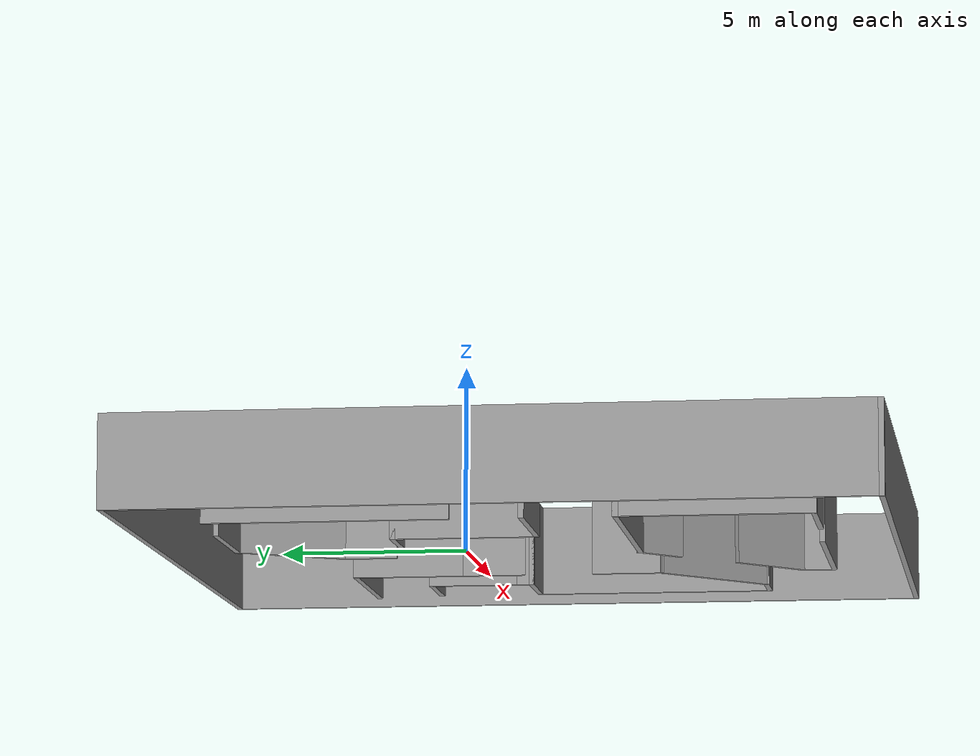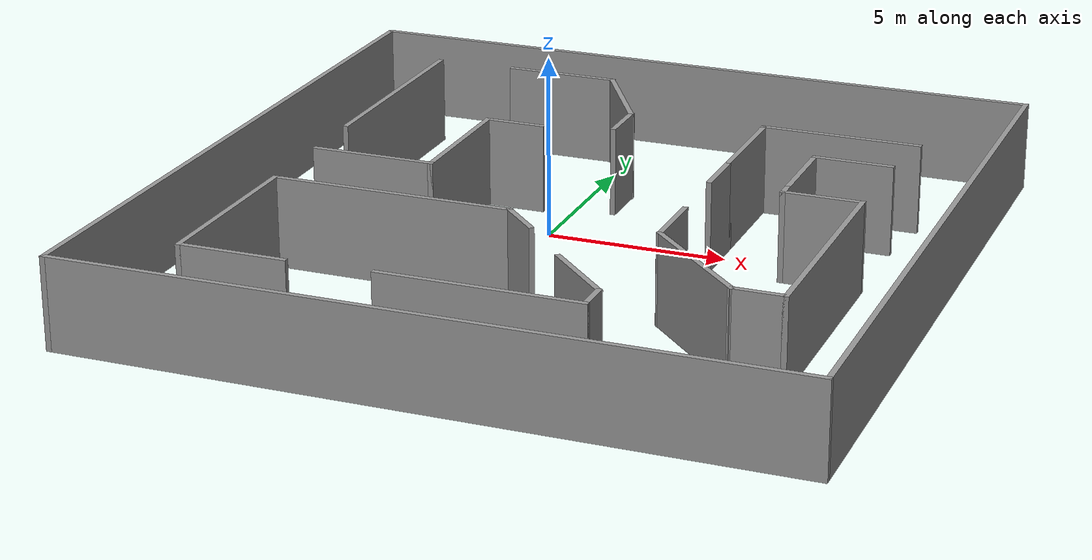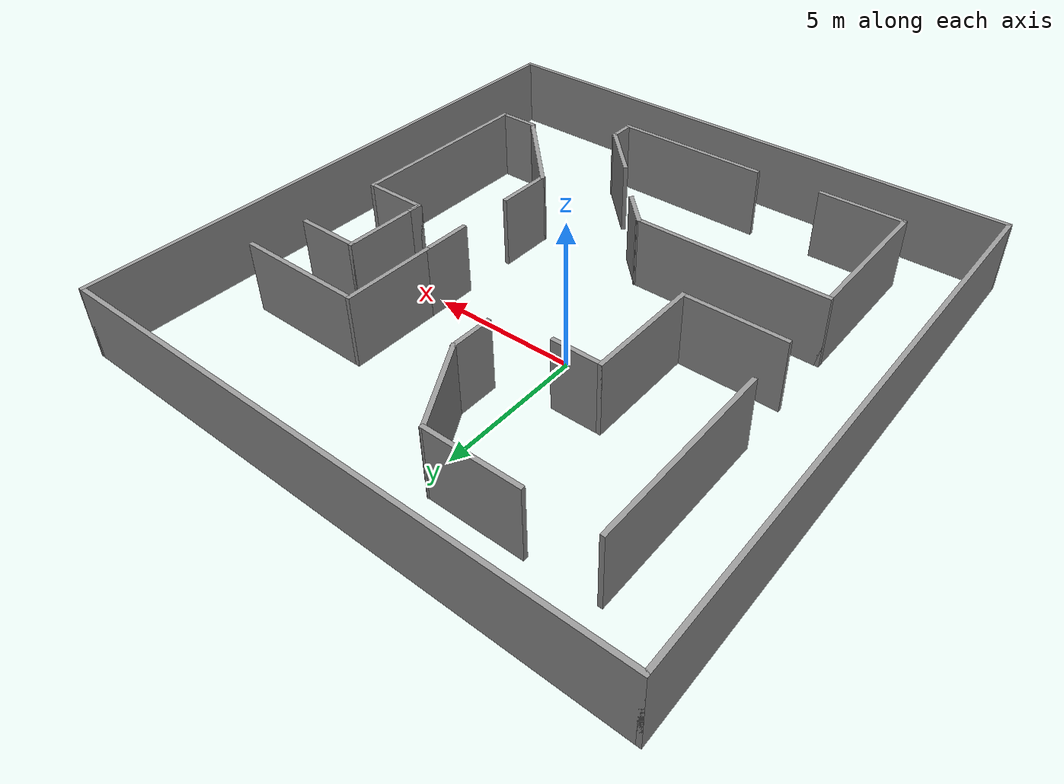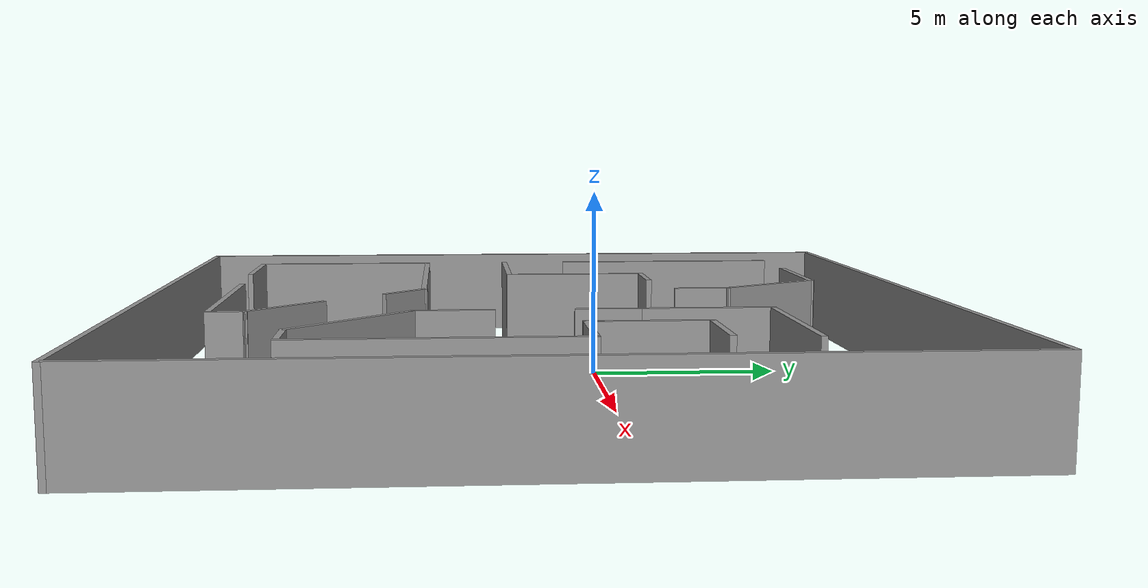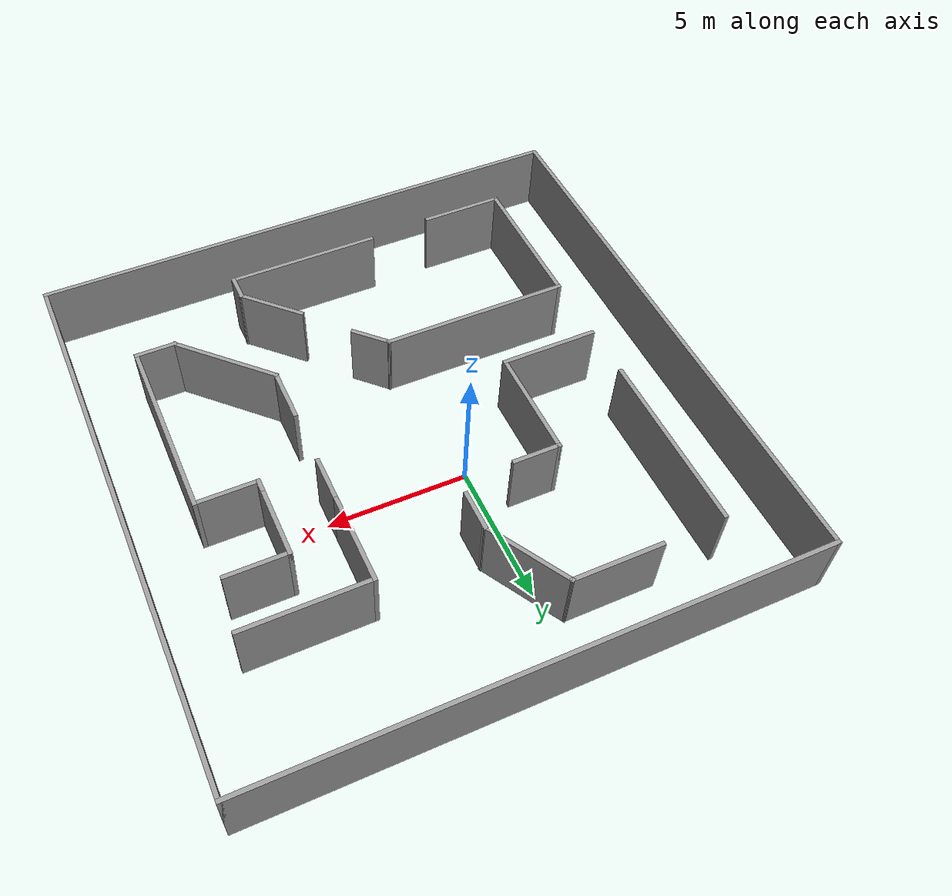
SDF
<?xml version='1.0'?>
<sdf version='1.6'>
  <model name='smaller_floorplan'>
    <pose frame=''>1.32311 -1.68686 0 0 -0 0</pose>
    <link name='Wall_12'>
      <collision name='Wall_12_Collision'>
        <geometry>
          <box>
            <size>3.25 0.15 2.5</size>
          </box>
        </geometry>
        <pose frame=''>0 0 1.25 0 -0 0</pose>
      </collision>
      <visual name='Wall_12_Visual'>
        <pose frame=''>0 0 1.25 0 -0 0</pose>
        <geometry>
          <box>
            <size>3.25 0.15 2.5</size>
          </box>
        </geometry>
        <material>
          <script>
            <uri>file://media/materials/scripts/gazebo.material</uri>
            <name>Gazebo/Grey</name>
          </script>
          <ambient>1 1 1 1</ambient>
        </material>
        <meta>
          <layer>0</layer>
        </meta>
      </visual>
      <pose frame=''>-3.35944 7.84693 0 0 -0 0</pose>
    </link>
    <link name='Wall_13'>
      <collision name='Wall_13_Collision'>
        <geometry>
          <box>
            <size>3.25 0.15 2.5</size>
          </box>
        </geometry>
        <pose frame=''>0 0 1.25 0 -0 0</pose>
      </collision>
      <visual name='Wall_13_Visual'>
        <pose frame=''>0 0 1.25 0 -0 0</pose>
        <geometry>
          <box>
            <size>3.25 0.15 2.5</size>
          </box>
        </geometry>
        <material>
          <script>
            <uri>file://media/materials/scripts/gazebo.material</uri>
            <name>Gazebo/Grey</name>
          </script>
          <ambient>1 1 1 1</ambient>
        </material>
        <meta>
          <layer>0</layer>
        </meta>
      </visual>
      <pose frame=''>-1.03444 6.50459 0 0 -0 -1.0472</pose>
    </link>
    <link name='Wall_14'>
      <collision name='Wall_14_Collision'>
        <geometry>
          <box>
            <size>1.5 0.15 2.5</size>
          </box>
        </geometry>
        <pose frame=''>0 0 1.25 0 -0 0</pose>
      </collision>
      <visual name='Wall_14_Visual'>
        <pose frame=''>0 0 1.25 0 -0 0</pose>
        <geometry>
          <box>
            <size>1.5 0.15 2.5</size>
          </box>
        </geometry>
        <material>
          <script>
            <uri>file://media/materials/scripts/gazebo.material</uri>
            <name>Gazebo/Grey</name>
          </script>
          <ambient>1 1 1 1</ambient>
        </material>
        <meta>
          <layer>0</layer>
        </meta>
      </visual>
      <pose frame=''>-0.259442 4.48725 0 0 -0 -1.5708</pose>
    </link>
    <link name='Wall_19'>
      <collision name='Wall_19_Collision'>
        <geometry>
          <box>
            <size>6.5 0.15 2.5</size>
          </box>
        </geometry>
        <pose frame=''>0 0 1.25 0 -0 0</pose>
      </collision>
      <visual name='Wall_19_Visual'>
        <pose frame=''>0 0 1.25 0 -0 0</pose>
        <geometry>
          <box>
            <size>6.5 0.15 2.5</size>
          </box>
        </geometry>
        <material>
          <script>
            <uri>file://media/materials/scripts/gazebo.material</uri>
            <name>Gazebo/Grey</name>
          </script>
          <ambient>1 1 1 1</ambient>
        </material>
        <meta>
          <layer>0</layer>
        </meta>
      </visual>
      <pose frame=''>-7.19375 4.57675 0 0 -0 -1.5708</pose>
    </link>
    <link name='Wall_21'>
      <collision name='Wall_21_Collision'>
        <geometry>
          <box>
            <size>6.75 0.15 2.5</size>
          </box>
        </geometry>
        <pose frame=''>0 0 1.25 0 -0 0</pose>
      </collision>
      <visual name='Wall_21_Visual'>
        <pose frame=''>0 0 1.25 0 -0 0</pose>
        <geometry>
          <box>
            <size>6.75 0.15 2.5</size>
          </box>
        </geometry>
        <material>
          <script>
            <uri>file://media/materials/scripts/gazebo.material</uri>
            <name>Gazebo/Grey</name>
          </script>
          <ambient>1 1 1 1</ambient>
        </material>
        <meta>
          <layer>0</layer>
        </meta>
      </visual>
      <pose frame=''>-3.84616 -2.95593 0 0 -0 0</pose>
    </link>
    <link name='Wall_22'>
      <collision name='Wall_22_Collision'>
        <geometry>
          <box>
            <size>1.5 0.15 2.5</size>
          </box>
        </geometry>
        <pose frame=''>0 0 1.25 0 -0 0</pose>
      </collision>
      <visual name='Wall_22_Visual'>
        <pose frame=''>0 0 1.25 0 -0 0</pose>
        <geometry>
          <box>
            <size>1.5 0.15 2.5</size>
          </box>
        </geometry>
        <material>
          <script>
            <uri>file://media/materials/scripts/gazebo.material</uri>
            <name>Gazebo/Grey</name>
          </script>
          <ambient>1 1 1 1</ambient>
        </material>
        <meta>
          <layer>0</layer>
        </meta>
      </visual>
      <pose frame=''>-0.068861 -3.43323 0 0 -0 -0.785398</pose>
    </link>
    <link name='Wall_24'>
      <collision name='Wall_24_Collision'>
        <geometry>
          <box>
            <size>2.5 0.15 2.5</size>
          </box>
        </geometry>
        <pose frame=''>0 0 1.25 0 -0 0</pose>
      </collision>
      <visual name='Wall_24_Visual'>
        <pose frame=''>0 0 1.25 0 -0 0</pose>
        <geometry>
          <box>
            <size>2.5 0.15 2.5</size>
          </box>
        </geometry>
        <material>
          <script>
            <uri>file://media/materials/scripts/gazebo.material</uri>
            <name>Gazebo/Grey</name>
          </script>
          <ambient>1 1 1 1</ambient>
        </material>
        <meta>
          <layer>0</layer>
        </meta>
      </visual>
      <pose frame=''>2.58397 -6.26145 0 0 -0 -0.785398</pose>
    </link>
    <link name='Wall_25'>
      <collision name='Wall_25_Collision'>
        <geometry>
          <box>
            <size>1 0.15 2.5</size>
          </box>
        </geometry>
        <pose frame=''>0 0 1.25 0 -0 0</pose>
      </collision>
      <visual name='Wall_25_Visual'>
        <pose frame=''>0 0 1.25 0 -0 0</pose>
        <geometry>
          <box>
            <size>1 0.15 2.5</size>
          </box>
        </geometry>
        <material>
          <script>
            <uri>file://media/materials/scripts/gazebo.material</uri>
            <name>Gazebo/Grey</name>
          </script>
          <ambient>1 1 1 1</ambient>
        </material>
        <meta>
          <layer>0</layer>
        </meta>
      </visual>
      <pose frame=''>3.41482 -7.5173 0 0 -0 -1.5708</pose>
    </link>
    <link name='Wall_26'>
      <collision name='Wall_26_Collision'>
        <geometry>
          <box>
            <size>5.5 0.15 2.5</size>
          </box>
        </geometry>
        <pose frame=''>0 0 1.25 0 -0 0</pose>
      </collision>
      <visual name='Wall_26_Visual'>
        <pose frame=''>0 0 1.25 0 -0 0</pose>
        <geometry>
          <box>
            <size>5.5 0.15 2.5</size>
          </box>
        </geometry>
        <material>
          <script>
            <uri>file://media/materials/scripts/gazebo.material</uri>
            <name>Gazebo/Grey</name>
          </script>
          <ambient>1 1 1 1</ambient>
        </material>
        <meta>
          <layer>0</layer>
        </meta>
      </visual>
      <pose frame=''>0.739818 -7.9423 0 0 -0 3.14159</pose>
    </link>
    <link name='Wall_3'>
      <collision name='Wall_3_Collision'>
        <geometry>
          <box>
            <size>20 0.15 2.5</size>
          </box>
        </geometry>
        <pose frame=''>0 0 1.25 0 -0 0</pose>
      </collision>
      <visual name='Wall_3_Visual'>
        <pose frame=''>0 0 1.25 0 -0 0</pose>
        <geometry>
          <box>
            <size>20 0.15 2.5</size>
          </box>
        </geometry>
        <material>
          <script>
            <uri>file://media/materials/scripts/gazebo.material</uri>
            <name>Gazebo/Grey</name>
          </script>
          <ambient>1 1 1 1</ambient>
        </material>
        <meta>
          <layer>0</layer>
        </meta>
      </visual>
      <pose frame=''>-9.8 0 0 0 -0 1.5708</pose>
    </link>
    <link name='Wall_30'>
      <collision name='Wall_30_Collision'>
        <geometry>
          <box>
            <size>5.25 0.15 2.5</size>
          </box>
        </geometry>
        <pose frame=''>0 0 1.25 0 -0 0</pose>
      </collision>
      <visual name='Wall_30_Visual'>
        <pose frame=''>0 0 1.25 0 -0 0</pose>
        <geometry>
          <box>
            <size>5.25 0.15 2.5</size>
          </box>
        </geometry>
        <material>
          <script>
            <uri>file://media/materials/scripts/gazebo.material</uri>
            <name>Gazebo/Grey</name>
          </script>
          <ambient>1 1 1 1</ambient>
        </material>
        <meta>
          <layer>0</layer>
        </meta>
      </visual>
      <pose frame=''>-7.14616 -5.50593 0 0 -0 -1.5708</pose>
    </link>
    <link name='Wall_31'>
      <collision name='Wall_31_Collision'>
        <geometry>
          <box>
            <size>3 0.15 2.5</size>
          </box>
        </geometry>
        <pose frame=''>0 0 1.25 0 -0 0</pose>
      </collision>
      <visual name='Wall_31_Visual'>
        <pose frame=''>0 0 1.25 0 -0 0</pose>
        <geometry>
          <box>
            <size>3 0.15 2.5</size>
          </box>
        </geometry>
        <material>
          <script>
            <uri>file://media/materials/scripts/gazebo.material</uri>
            <name>Gazebo/Grey</name>
          </script>
          <ambient>1 1 1 1</ambient>
        </material>
        <meta>
          <layer>0</layer>
        </meta>
      </visual>
      <pose frame=''>-5.72116 -8.05593 0 0 -0 0</pose>
    </link>
    <link name='Wall_33'>
      <collision name='Wall_33_Collision'>
        <geometry>
          <box>
            <size>3.5 0.15 2.5</size>
          </box>
        </geometry>
        <pose frame=''>0 0 1.25 0 -0 0</pose>
      </collision>
      <visual name='Wall_33_Visual'>
        <pose frame=''>0 0 1.25 0 -0 0</pose>
        <geometry>
          <box>
            <size>3.5 0.15 2.5</size>
          </box>
        </geometry>
        <material>
          <script>
            <uri>file://media/materials/scripts/gazebo.material</uri>
            <name>Gazebo/Grey</name>
          </script>
          <ambient>1 1 1 1</ambient>
        </material>
        <meta>
          <layer>0</layer>
        </meta>
      </visual>
      <pose frame=''>-5.47116 -0.528858 0 0 -0 0</pose>
    </link>
    <link name='Wall_34'>
      <collision name='Wall_34_Collision'>
        <geometry>
          <box>
            <size>4 0.15 2.5</size>
          </box>
        </geometry>
        <pose frame=''>0 0 1.25 0 -0 0</pose>
      </collision>
      <visual name='Wall_34_Visual'>
        <pose frame=''>0 0 1.25 0 -0 0</pose>
        <geometry>
          <box>
            <size>4 0.15 2.5</size>
          </box>
        </geometry>
        <material>
          <script>
            <uri>file://media/materials/scripts/gazebo.material</uri>
            <name>Gazebo/Grey</name>
          </script>
          <ambient>1 1 1 1</ambient>
        </material>
        <meta>
          <layer>0</layer>
        </meta>
      </visual>
      <pose frame=''>-3.79616 1.39614 0 0 -0 1.5708</pose>
    </link>
    <link name='Wall_35'>
      <collision name='Wall_35_Collision'>
        <geometry>
          <box>
            <size>1.75 0.15 2.5</size>
          </box>
        </geometry>
        <pose frame=''>0 0 1.25 0 -0 0</pose>
      </collision>
      <visual name='Wall_35_Visual'>
        <pose frame=''>0 0 1.25 0 -0 0</pose>
        <geometry>
          <box>
            <size>1.75 0.15 2.5</size>
          </box>
        </geometry>
        <material>
          <script>
            <uri>file://media/materials/scripts/gazebo.material</uri>
            <name>Gazebo/Grey</name>
          </script>
          <ambient>1 1 1 1</ambient>
        </material>
        <meta>
          <layer>0</layer>
        </meta>
      </visual>
      <pose frame=''>-2.99616 3.32114 0 0 -0 0</pose>
    </link>
    <link name='Wall_39'>
      <collision name='Wall_39_Collision'>
        <geometry>
          <box>
            <size>1.75 0.15 2.5</size>
          </box>
        </geometry>
        <pose frame=''>0 0 1.25 0 -0 0</pose>
      </collision>
      <visual name='Wall_39_Visual'>
        <pose frame=''>0 0 1.25 0 -0 0</pose>
        <geometry>
          <box>
            <size>1.75 0.15 2.5</size>
          </box>
        </geometry>
        <material>
          <script>
            <uri>file://media/materials/scripts/gazebo.material</uri>
            <name>Gazebo/Grey</name>
          </script>
          <ambient>1 1 1 1</ambient>
        </material>
        <meta>
          <layer>0</layer>
        </meta>
      </visual>
      <pose frame=''>3.51572 1.56475 0 0 -0 -1.5708</pose>
    </link>
    <link name='Wall_41'>
      <collision name='Wall_41_Collision'>
        <geometry>
          <box>
            <size>2 0.15 2.5</size>
          </box>
        </geometry>
        <pose frame=''>0 0 1.25 0 -0 0</pose>
      </collision>
      <visual name='Wall_41_Visual'>
        <pose frame=''>0 0 1.25 0 -0 0</pose>
        <geometry>
          <box>
            <size>2 0.15 2.5</size>
          </box>
        </geometry>
        <material>
          <script>
            <uri>file://media/materials/scripts/gazebo.material</uri>
            <name>Gazebo/Grey</name>
          </script>
          <ambient>1 1 1 1</ambient>
        </material>
        <meta>
          <layer>0</layer>
        </meta>
      </visual>
      <pose frame=''>3.52997 -2.19847 0 0 -0 -1.5708</pose>
    </link>
    <link name='Wall_42'>
      <collision name='Wall_42_Collision'>
        <geometry>
          <box>
            <size>4 0.15 2.5</size>
          </box>
        </geometry>
        <pose frame=''>0 0 1.25 0 -0 0</pose>
      </collision>
      <visual name='Wall_42_Visual'>
        <pose frame=''>0 0 1.25 0 -0 0</pose>
        <geometry>
          <box>
            <size>4 0.15 2.5</size>
          </box>
        </geometry>
        <material>
          <script>
            <uri>file://media/materials/scripts/gazebo.material</uri>
            <name>Gazebo/Grey</name>
          </script>
          <ambient>1 1 1 1</ambient>
        </material>
        <meta>
          <layer>0</layer>
        </meta>
      </visual>
      <pose frame=''>4.89116 -4.48465 0 0 -0 -0.785398</pose>
    </link>
    <link name='Wall_43'>
      <collision name='Wall_43_Collision'>
        <geometry>
          <box>
            <size>1.5 0.15 2.5</size>
          </box>
        </geometry>
        <pose frame=''>0 0 1.25 0 -0 0</pose>
      </collision>
      <visual name='Wall_43_Visual'>
        <pose frame=''>0 0 1.25 0 -0 0</pose>
        <geometry>
          <box>
            <size>1.5 0.15 2.5</size>
          </box>
        </geometry>
        <material>
          <script>
            <uri>file://media/materials/scripts/gazebo.material</uri>
            <name>Gazebo/Grey</name>
          </script>
          <ambient>1 1 1 1</ambient>
        </material>
        <meta>
          <layer>0</layer>
        </meta>
      </visual>
      <pose frame=''>6.92734 -5.84583 0 0 -0 0</pose>
    </link>
    <link name='Wall_44'>
      <collision name='Wall_44_Collision'>
        <geometry>
          <box>
            <size>6.75 0.15 2.5</size>
          </box>
        </geometry>
        <pose frame=''>0 0 1.25 0 -0 0</pose>
      </collision>
      <visual name='Wall_44_Visual'>
        <pose frame=''>0 0 1.25 0 -0 0</pose>
        <geometry>
          <box>
            <size>6.75 0.15 2.5</size>
          </box>
        </geometry>
        <material>
          <script>
            <uri>file://media/materials/scripts/gazebo.material</uri>
            <name>Gazebo/Grey</name>
          </script>
          <ambient>1 1 1 1</ambient>
        </material>
        <meta>
          <layer>0</layer>
        </meta>
      </visual>
      <pose frame=''>7.60234 -2.54583 0 0 -0 1.5708</pose>
    </link>
    <link name='Wall_45'>
      <collision name='Wall_45_Collision'>
        <geometry>
          <box>
            <size>2.25 0.15 2.5</size>
          </box>
        </geometry>
        <pose frame=''>0 0 1.25 0 -0 0</pose>
      </collision>
      <visual name='Wall_45_Visual'>
        <pose frame=''>0 0 1.25 0 -0 0</pose>
        <geometry>
          <box>
            <size>2.25 0.15 2.5</size>
          </box>
        </geometry>
        <material>
          <script>
            <uri>file://media/materials/scripts/gazebo.material</uri>
            <name>Gazebo/Grey</name>
          </script>
          <ambient>1 1 1 1</ambient>
        </material>
        <meta>
          <layer>0</layer>
        </meta>
      </visual>
      <pose frame=''>6.55234 0.754168 0 0 -0 3.14159</pose>
    </link>
    <link name='Wall_46'>
      <collision name='Wall_46_Collision'>
        <geometry>
          <box>
            <size>0.5 0.15 2.5</size>
          </box>
        </geometry>
        <pose frame=''>0 0 1.25 0 -0 0</pose>
      </collision>
      <visual name='Wall_46_Visual'>
        <pose frame=''>0 0 1.25 0 -0 0</pose>
        <geometry>
          <box>
            <size>0.5 0.15 2.5</size>
          </box>
        </geometry>
        <material>
          <script>
            <uri>file://media/materials/scripts/gazebo.material</uri>
            <name>Gazebo/Grey</name>
          </script>
          <ambient>1 1 1 1</ambient>
        </material>
        <meta>
          <layer>0</layer>
        </meta>
      </visual>
      <pose frame=''>5.50234 0.929168 0 0 -0 1.5708</pose>
    </link>
    <link name='Wall_48'>
      <collision name='Wall_48_Collision'>
        <geometry>
          <box>
            <size>3.25 0.15 2.5</size>
          </box>
        </geometry>
        <pose frame=''>0 0 1.25 0 -0 0</pose>
      </collision>
      <visual name='Wall_48_Visual'>
        <pose frame=''>0 0 1.25 0 -0 0</pose>
        <geometry>
          <box>
            <size>3.25 0.15 2.5</size>
          </box>
        </geometry>
        <material>
          <script>
            <uri>file://media/materials/scripts/gazebo.material</uri>
            <name>Gazebo/Grey</name>
          </script>
          <ambient>1 1 1 1</ambient>
        </material>
        <meta>
          <layer>0</layer>
        </meta>
      </visual>
      <pose frame=''>3.51572 3.91475 0 0 -0 1.5708</pose>
    </link>
    <link name='Wall_49'>
      <collision name='Wall_49_Collision'>
        <geometry>
          <box>
            <size>4.5 0.15 2.5</size>
          </box>
        </geometry>
        <pose frame=''>0 0 1.25 0 -0 0</pose>
      </collision>
      <visual name='Wall_49_Visual'>
        <pose frame=''>0 0 1.25 0 -0 0</pose>
        <geometry>
          <box>
            <size>4.5 0.15 2.5</size>
          </box>
        </geometry>
        <material>
          <script>
            <uri>file://media/materials/scripts/gazebo.material</uri>
            <name>Gazebo/Grey</name>
          </script>
          <ambient>1 1 1 1</ambient>
        </material>
        <meta>
          <layer>0</layer>
        </meta>
      </visual>
      <pose frame=''>5.69072 5.46475 0 0 -0 0</pose>
    </link>
    <link name='Wall_5'>
      <collision name='Wall_5_Collision'>
        <geometry>
          <box>
            <size>19.75 0.15 2.5</size>
          </box>
        </geometry>
        <pose frame=''>0 0 1.25 0 -0 0</pose>
      </collision>
      <visual name='Wall_5_Visual'>
        <pose frame=''>0 0 1.25 0 -0 0</pose>
        <geometry>
          <box>
            <size>19.75 0.15 2.5</size>
          </box>
        </geometry>
        <material>
          <script>
            <uri>file://media/materials/scripts/gazebo.material</uri>
            <name>Gazebo/Grey</name>
          </script>
          <ambient>1 1 1 1</ambient>
        </material>
        <meta>
          <layer>0</layer>
        </meta>
      </visual>
      <pose frame=''>0 9.925 0 0 -0 0</pose>
    </link>
    <link name='Wall_51'>
      <collision name='Wall_51_Collision'>
        <geometry>
          <box>
            <size>3 0.15 2.5</size>
          </box>
        </geometry>
        <pose frame=''>0 0 1.25 0 -0 0</pose>
      </collision>
      <visual name='Wall_51_Visual'>
        <pose frame=''>0 0 1.25 0 -0 0</pose>
        <geometry>
          <box>
            <size>3 0.15 2.5</size>
          </box>
        </geometry>
        <material>
          <script>
            <uri>file://media/materials/scripts/gazebo.material</uri>
            <name>Gazebo/Grey</name>
          </script>
          <ambient>1 1 1 1</ambient>
        </material>
        <meta>
          <layer>0</layer>
        </meta>
      </visual>
      <pose frame=''>5.50234 2.17917 0 0 -0 1.5708</pose>
    </link>
    <link name='Wall_52'>
      <collision name='Wall_52_Collision'>
        <geometry>
          <box>
            <size>2.25 0.15 2.5</size>
          </box>
        </geometry>
        <pose frame=''>0 0 1.25 0 -0 0</pose>
      </collision>
      <visual name='Wall_52_Visual'>
        <pose frame=''>0 0 1.25 0 -0 0</pose>
        <geometry>
          <box>
            <size>2.25 0.15 2.5</size>
          </box>
        </geometry>
        <material>
          <script>
            <uri>file://media/materials/scripts/gazebo.material</uri>
            <name>Gazebo/Grey</name>
          </script>
          <ambient>1 1 1 1</ambient>
        </material>
        <meta>
          <layer>0</layer>
        </meta>
      </visual>
      <pose frame=''>6.55234 3.60417 0 0 -0 0</pose>
    </link>
    <link name='Wall_6'>
      <collision name='Wall_6_Collision'>
        <geometry>
          <box>
            <size>20 0.15 2.5</size>
          </box>
        </geometry>
        <pose frame=''>0 0 1.25 0 -0 0</pose>
      </collision>
      <visual name='Wall_6_Visual'>
        <pose frame=''>0 0 1.25 0 -0 0</pose>
        <geometry>
          <box>
            <size>20 0.15 2.5</size>
          </box>
        </geometry>
        <material>
          <script>
            <uri>file://media/materials/scripts/gazebo.material</uri>
            <name>Gazebo/Grey</name>
          </script>
          <ambient>1 1 1 1</ambient>
        </material>
        <meta>
          <layer>0</layer>
        </meta>
      </visual>
      <pose frame=''>9.8 0 0 0 -0 -1.5708</pose>
    </link>
    <link name='Wall_7'>
      <collision name='Wall_7_Collision'>
        <geometry>
          <box>
            <size>19.75 0.15 2.5</size>
          </box>
        </geometry>
        <pose frame=''>0 0 1.25 0 -0 0</pose>
      </collision>
      <visual name='Wall_7_Visual'>
        <pose frame=''>0 0 1.25 0 -0 0</pose>
        <geometry>
          <box>
            <size>19.75 0.15 2.5</size>
          </box>
        </geometry>
        <material>
          <script>
            <uri>file://media/materials/scripts/gazebo.material</uri>
            <name>Gazebo/Grey</name>
          </script>
          <ambient>1 1 1 1</ambient>
        </material>
        <meta>
          <layer>0</layer>
        </meta>
      </visual>
      <pose frame=''>0 -9.925 0 0 -0 3.14159</pose>
    </link>
    <static>1</static>
  </model>
</sdf>
